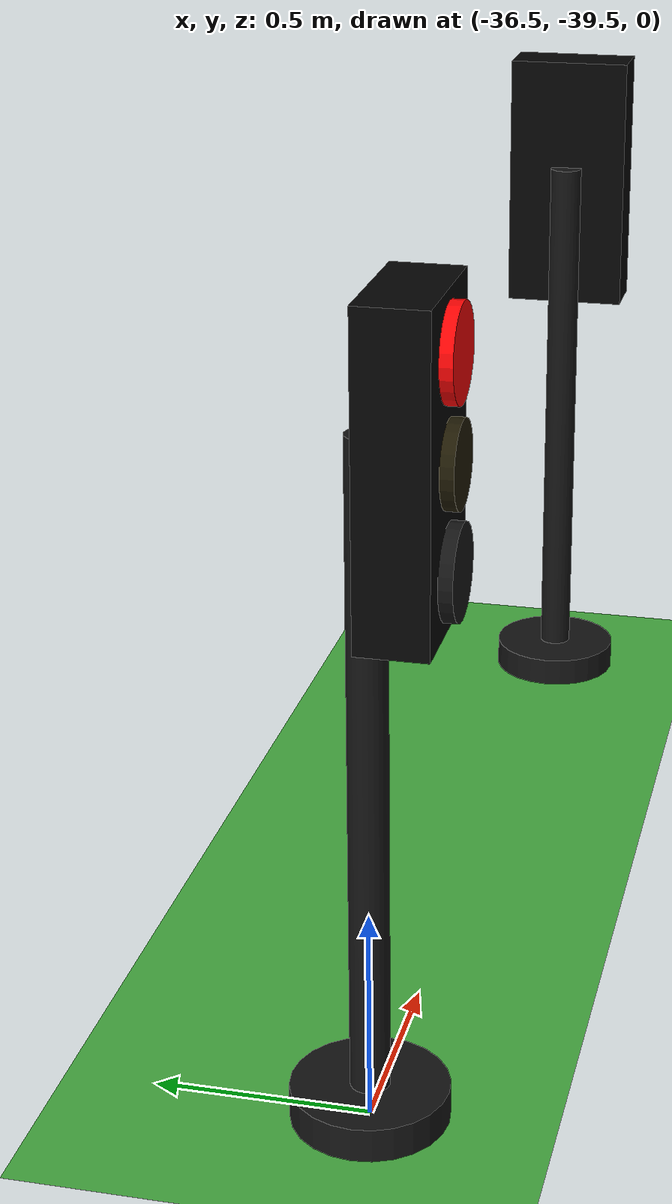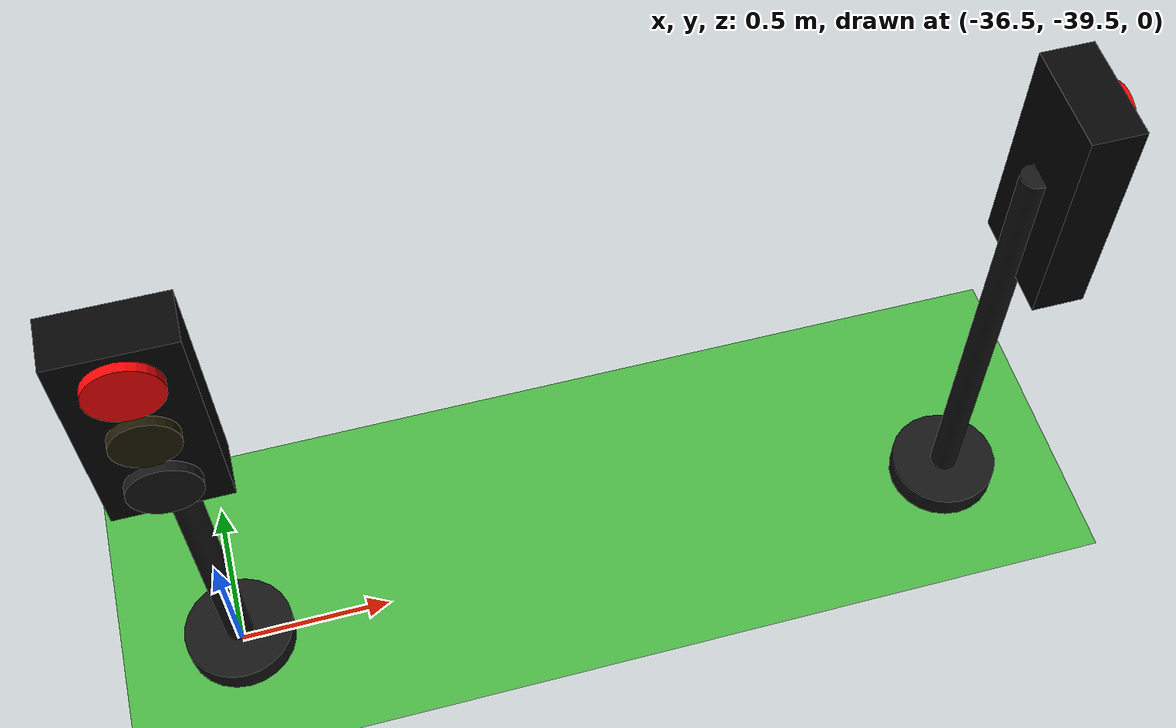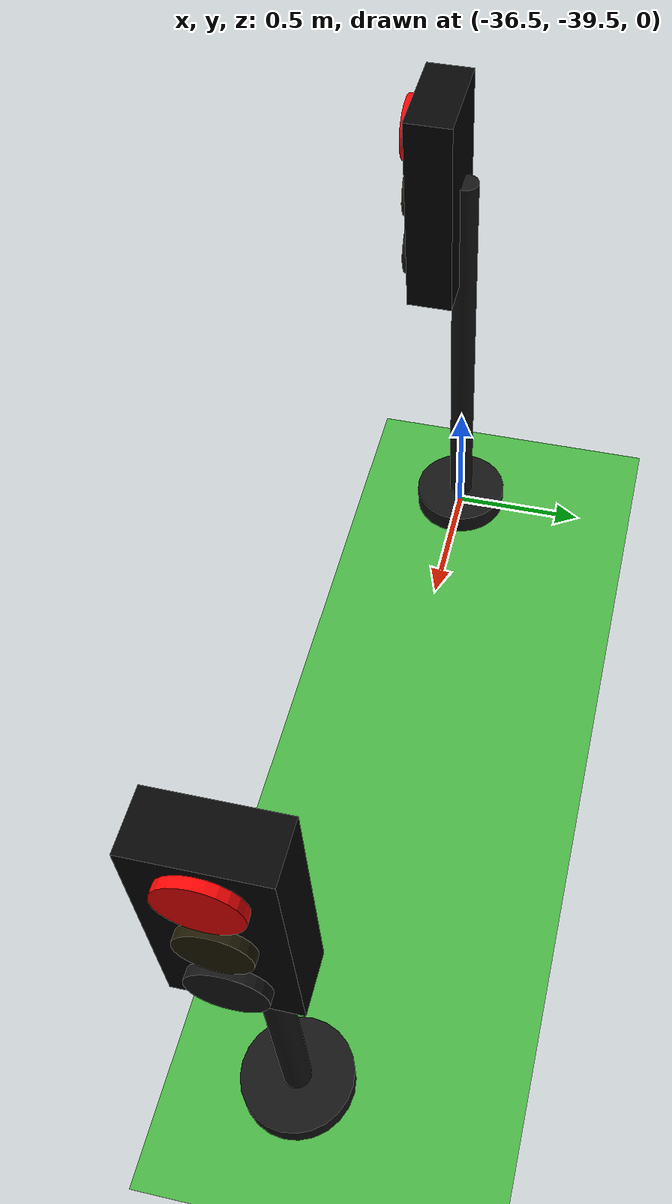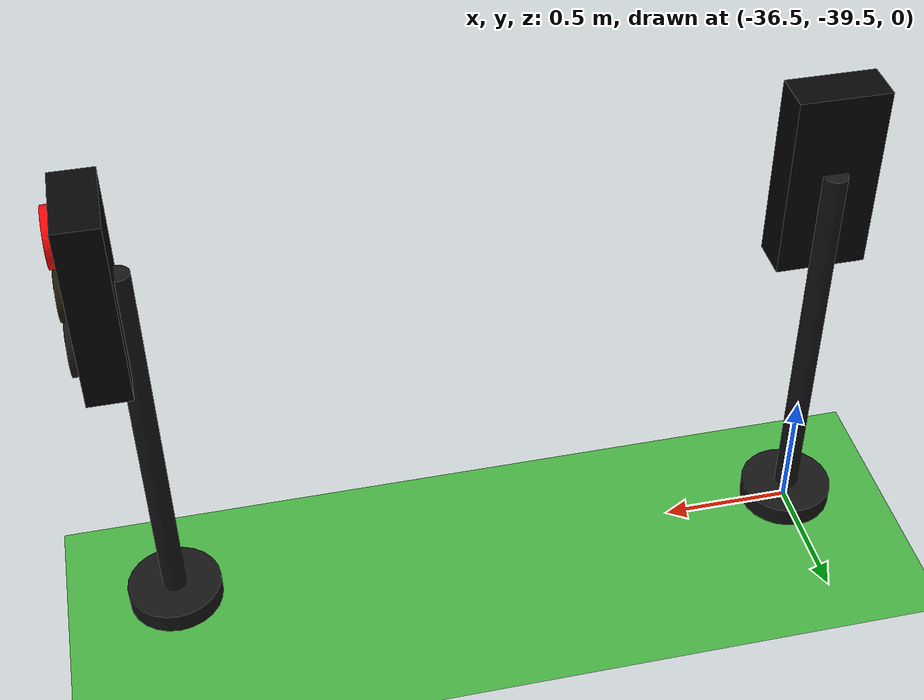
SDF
<sdf version="1.10">
 <world name="city_second">
  <model name="ground_plane">
   <static>true</static>
   <link name="link">
    <collision name="collision">
     <geometry><plane><normal>0 0 1</normal><size>300 300</size></plane></geometry>
    </collision>
    <visual name="visual">
     <geometry><plane><normal>0 0 1</normal><size>300 300</size></plane></geometry>
     <material>
      <ambient>0.280000001 0.689999998 0.25999999 1</ambient>
      <diffuse>0.280000001 0.689999998 0.25999999 1</diffuse>
      <specular>0.0299999993 0.0299999993 0.0299999993 1</specular>
     </material>
    </visual>
    <inertial>
     <mass>1</mass>
     <inertia><ixx>1</ixx><ixy>0</ixy><ixz>0</ixz><iyy>1</iyy><iyz>0</iyz><izz>1</izz></inertia>
    </inertial>
   </link>
  </model>
  <model name="simple_traffic_light_red_south">
   <static>true</static>
   <pose>-36.5 -39.5 0 0 0 -3.1415899999999999</pose>
   <link name="base">
    <pose>0 0 0.040000000000000001 0 0 0</pose>
    <collision name="collision">
     <geometry>
      <cylinder><radius>0.17999999999999999</radius><length>0.080000000000000002</length></cylinder>
     </geometry>
    </collision>
    <visual name="visual">
     <geometry>
      <cylinder><radius>0.17999999999999999</radius><length>0.080000000000000002</length></cylinder>
     </geometry>
     <material>
      <ambient>0.0799999982 0.0799999982 0.0799999982 1</ambient>
      <diffuse>0.0799999982 0.0799999982 0.0799999982 1</diffuse>
      <specular>0.150000006 0.150000006 0.150000006 1</specular>
      <emissive>0 0 0 1</emissive>
     </material>
    </visual>
    <inertial>
     <mass>1</mass>
     <inertia><ixx>1</ixx><ixy>0</ixy><ixz>0</ixz><iyy>1</iyy><iyz>0</iyz><izz>1</izz></inertia>
    </inertial>
   </link>
   <link name="pole">
    <pose>0 1.4210899999999999e-14 0.80000000000000004 0 0 0</pose>
    <collision name="collision">
     <geometry>
      <cylinder><radius>0.044999999999999998</radius><length>1.6000000000000001</length></cylinder>
     </geometry>
    </collision>
    <visual name="visual">
     <geometry>
      <cylinder><radius>0.044999999999999998</radius><length>1.6000000000000001</length></cylinder>
     </geometry>
     <material>
      <ambient>0.0799999982 0.0799999982 0.0799999982 1</ambient>
      <diffuse>0.0799999982 0.0799999982 0.0799999982 1</diffuse>
      <specular>0.150000006 0.150000006 0.150000006 1</specular>
      <emissive>0 0 0 1</emissive>
     </material>
    </visual>
    <inertial>
     <mass>1</mass>
     <inertia><ixx>1</ixx><ixy>0</ixy><ixz>0</ixz><iyy>1</iyy><iyz>0</iyz><izz>1</izz></inertia>
    </inertial>
   </link>
   <link name="signal_box">
    <pose>1.4210899999999999e-14 0.089999999999999997 1.55 0 0 0</pose>
    <collision name="collision">
     <geometry><box><size>0.34000000000000002 0.16 0.71999999999999997</size></box></geometry>
    </collision>
    <visual name="visual">
     <geometry><box><size>0.34000000000000002 0.16 0.71999999999999997</size></box></geometry>
     <material>
      <ambient>0.0199999996 0.0199999996 0.0199999996 1</ambient>
      <diffuse>0.0199999996 0.0199999996 0.0199999996 1</diffuse>
      <specular>0.150000006 0.150000006 0.150000006 1</specular>
      <emissive>0 0 0 1</emissive>
     </material>
    </visual>
    <inertial>
     <mass>1</mass>
     <inertia><ixx>1</ixx><ixy>0</ixy><ixz>0</ixz><iyy>1</iyy><iyz>0</iyz><izz>1</izz></inertia>
    </inertial>
   </link>
   <link name="red_lens">
    <pose>0 0.18099999999999999 1.78 1.5708 -1.0315600000000006e-16 3.0231600000000003e-16</pose>
    <collision name="collision">
     <geometry><cylinder><radius>0.105</radius><length>0.035000000000000003</length></cylinder></geometry>
    </collision>
    <visual name="visual">
     <geometry><cylinder><radius>0.105</radius><length>0.035000000000000003</length></cylinder></geometry>
     <material>
      <ambient>1 0.0199999996 0.0199999996 1</ambient>
      <diffuse>1 0.0199999996 0.0199999996 1</diffuse>
      <specular>0.150000006 0.150000006 0.150000006 1</specular>
      <emissive>1 0.0199999996 0.0199999996 1</emissive>
     </material>
    </visual>
    <inertial>
     <mass>1</mass>
     <inertia><ixx>1</ixx><ixy>0</ixy><ixz>0</ixz><iyy>1</iyy><iyz>0</iyz><izz>1</izz></inertia>
    </inertial>
   </link>
   <link name="yellow_lens">
    <pose>1.4210899999999999e-14 0.182 1.55 1.5708 -1.0315600000000006e-16 3.0231600000000003e-16</pose>
    <collision name="collision">
     <geometry>
      <cylinder><radius>0.095000000000000001</radius><length>0.035000000000000003</length></cylinder>
     </geometry>
    </collision>
    <visual name="visual">
     <geometry>
      <cylinder><radius>0.095000000000000001</radius><length>0.035000000000000003</length></cylinder>
     </geometry>
     <material>
      <ambient>0.119999997 0.100000001 0.0199999996 1</ambient>
      <diffuse>0.119999997 0.100000001 0.0199999996 1</diffuse>
      <specular>0.150000006 0.150000006 0.150000006 1</specular>
      <emissive>0 0 0 1</emissive>
     </material>
    </visual>
    <inertial>
     <mass>1</mass>
     <inertia><ixx>1</ixx><ixy>0</ixy><ixz>0</ixz><iyy>1</iyy><iyz>0</iyz><izz>1</izz></inertia>
    </inertial>
   </link>
   <link name="green_lens">
    <pose>-1.4210899999999999e-14 0.183 1.3200000000000001 1.5708 -1.0315600000000006e-16 3.0231600000000003e-16</pose>
    <collision name="collision">
     <geometry><cylinder><radius>0.105</radius><length>0.035000000000000003</length></cylinder></geometry>
    </collision>
    <visual name="visual">
     <geometry><cylinder><radius>0.105</radius><length>0.035000000000000003</length></cylinder></geometry>
     <material>
      <ambient>0.0799999982 0.0799999982 0.0799999982 1</ambient>
      <diffuse>0.0799999982 0.0799999982 0.0799999982 1</diffuse>
      <specular>0.150000006 0.150000006 0.150000006 1</specular>
      <emissive>0 0 0 1</emissive>
     </material>
    </visual>
    <inertial>
     <mass>1</mass>
     <inertia><ixx>1</ixx><ixy>0</ixy><ixz>0</ixz><iyy>1</iyy><iyz>0</iyz><izz>1</izz></inertia>
    </inertial>
   </link>
   <light name="red_glow" type="point">
    <pose>0 0.28 1.78 0 0 0</pose>
    <diffuse>1 0.02 0.02 1</diffuse>
    <specular>1 0.02 0.02 1</specular>
    <attenuation>
     <range>3.0</range>
     <constant>0.8</constant>
     <linear>0.15</linear>
     <quadratic>0.02</quadratic>
    </attenuation>
    <cast_shadows>false</cast_shadows>
   </light>
  </model>
  <model name="simple_traffic_light_red_east">
   <static>true</static>
   <pose>-34 -39.5 0 0 0 -1.5708</pose>
   <link name="base">
    <pose>0 0 0.040000000000000001 0 0 0</pose>
    <collision name="collision">
     <geometry>
      <cylinder><radius>0.17999999999999999</radius><length>0.080000000000000002</length></cylinder>
     </geometry>
    </collision>
    <visual name="visual">
     <geometry>
      <cylinder><radius>0.17999999999999999</radius><length>0.080000000000000002</length></cylinder>
     </geometry>
     <material>
      <ambient>0.0799999982 0.0799999982 0.0799999982 1</ambient>
      <diffuse>0.0799999982 0.0799999982 0.0799999982 1</diffuse>
      <specular>0.150000006 0.150000006 0.150000006 1</specular>
      <emissive>0 0 0 1</emissive>
     </material>
    </visual>
    <inertial>
     <mass>1</mass>
     <inertia><ixx>1</ixx><ixy>0</ixy><ixz>0</ixz><iyy>1</iyy><iyz>0</iyz><izz>1</izz></inertia>
    </inertial>
   </link>
   <link name="pole">
    <pose>-7.10543e-15 1.4210899999999999e-14 0.80000000000000004 0 0 0</pose>
    <collision name="collision">
     <geometry>
      <cylinder><radius>0.044999999999999998</radius><length>1.6000000000000001</length></cylinder>
     </geometry>
    </collision>
    <visual name="visual">
     <geometry>
      <cylinder><radius>0.044999999999999998</radius><length>1.6000000000000001</length></cylinder>
     </geometry>
     <material>
      <ambient>0.0799999982 0.0799999982 0.0799999982 1</ambient>
      <diffuse>0.0799999982 0.0799999982 0.0799999982 1</diffuse>
      <specular>0.150000006 0.150000006 0.150000006 1</specular>
      <emissive>0 0 0 1</emissive>
     </material>
    </visual>
    <inertial>
     <mass>1</mass>
     <inertia><ixx>1</ixx><ixy>0</ixy><ixz>0</ixz><iyy>1</iyy><iyz>0</iyz><izz>1</izz></inertia>
    </inertial>
   </link>
   <link name="signal_box">
    <pose>7.10543e-15 0.089999999999999997 1.55 0 0 0</pose>
    <collision name="collision">
     <geometry><box><size>0.34000000000000002 0.16 0.71999999999999997</size></box></geometry>
    </collision>
    <visual name="visual">
     <geometry><box><size>0.34000000000000002 0.16 0.71999999999999997</size></box></geometry>
     <material>
      <ambient>0.0199999996 0.0199999996 0.0199999996 1</ambient>
      <diffuse>0.0199999996 0.0199999996 0.0199999996 1</diffuse>
      <specular>0.150000006 0.150000006 0.150000006 1</specular>
      <emissive>0 0 0 1</emissive>
     </material>
    </visual>
    <inertial>
     <mass>1</mass>
     <inertia><ixx>1</ixx><ixy>0</ixy><ixz>0</ixz><iyy>1</iyy><iyz>0</iyz><izz>1</izz></inertia>
    </inertial>
   </link>
   <link name="red_lens">
    <pose>-7.10543e-15 0.18099999999999999 1.78 1.5708 7.8504600000000028e-17 7.8504600000000004e-17</pose>
    <collision name="collision">
     <geometry><cylinder><radius>0.105</radius><length>0.035000000000000003</length></cylinder></geometry>
    </collision>
    <visual name="visual">
     <geometry><cylinder><radius>0.105</radius><length>0.035000000000000003</length></cylinder></geometry>
     <material>
      <ambient>1 0.0199999996 0.0199999996 1</ambient>
      <diffuse>1 0.0199999996 0.0199999996 1</diffuse>
      <specular>0.150000006 0.150000006 0.150000006 1</specular>
      <emissive>1 0.0199999996 0.0199999996 1</emissive>
     </material>
    </visual>
    <inertial>
     <mass>1</mass>
     <inertia><ixx>1</ixx><ixy>0</ixy><ixz>0</ixz><iyy>1</iyy><iyz>0</iyz><izz>1</izz></inertia>
    </inertial>
   </link>
   <link name="yellow_lens">
    <pose>-7.10543e-15 0.182 1.55 1.5708 7.8504600000000028e-17 7.8504600000000004e-17</pose>
    <collision name="collision">
     <geometry>
      <cylinder><radius>0.095000000000000001</radius><length>0.035000000000000003</length></cylinder>
     </geometry>
    </collision>
    <visual name="visual">
     <geometry>
      <cylinder><radius>0.095000000000000001</radius><length>0.035000000000000003</length></cylinder>
     </geometry>
     <material>
      <ambient>0.119999997 0.100000001 0.0199999996 1</ambient>
      <diffuse>0.119999997 0.100000001 0.0199999996 1</diffuse>
      <specular>0.150000006 0.150000006 0.150000006 1</specular>
      <emissive>0 0 0 1</emissive>
     </material>
    </visual>
    <inertial>
     <mass>1</mass>
     <inertia><ixx>1</ixx><ixy>0</ixy><ixz>0</ixz><iyy>1</iyy><iyz>0</iyz><izz>1</izz></inertia>
    </inertial>
   </link>
   <link name="green_lens">
    <pose>-7.10543e-15 0.183 1.3200000000000001 1.5708 7.8504600000000028e-17 7.8504600000000004e-17</pose>
    <collision name="collision">
     <geometry><cylinder><radius>0.105</radius><length>0.035000000000000003</length></cylinder></geometry>
    </collision>
    <visual name="visual">
     <geometry><cylinder><radius>0.105</radius><length>0.035000000000000003</length></cylinder></geometry>
     <material>
      <ambient>0.0799999982 0.0799999982 0.0799999982 1</ambient>
      <diffuse>0.0799999982 0.0799999982 0.0799999982 1</diffuse>
      <specular>0.150000006 0.150000006 0.150000006 1</specular>
      <emissive>0 0 0 1</emissive>
     </material>
    </visual>
    <inertial>
     <mass>1</mass>
     <inertia><ixx>1</ixx><ixy>0</ixy><ixz>0</ixz><iyy>1</iyy><iyz>0</iyz><izz>1</izz></inertia>
    </inertial>
   </link>
   <light name="red_glow" type="point">
    <pose>0 0.28 1.78 0 0 0</pose>
    <diffuse>1 0.02 0.02 1</diffuse>
    <specular>1 0.02 0.02 1</specular>
    <attenuation>
     <range>3.0</range>
     <constant>0.8</constant>
     <linear>0.15</linear>
     <quadratic>0.02</quadratic>
    </attenuation>
    <cast_shadows>false</cast_shadows>
   </light>
  </model>
 </world>
</sdf>
